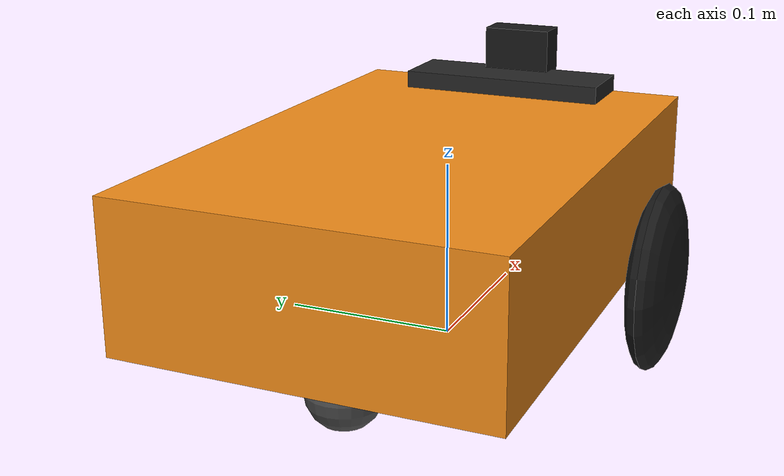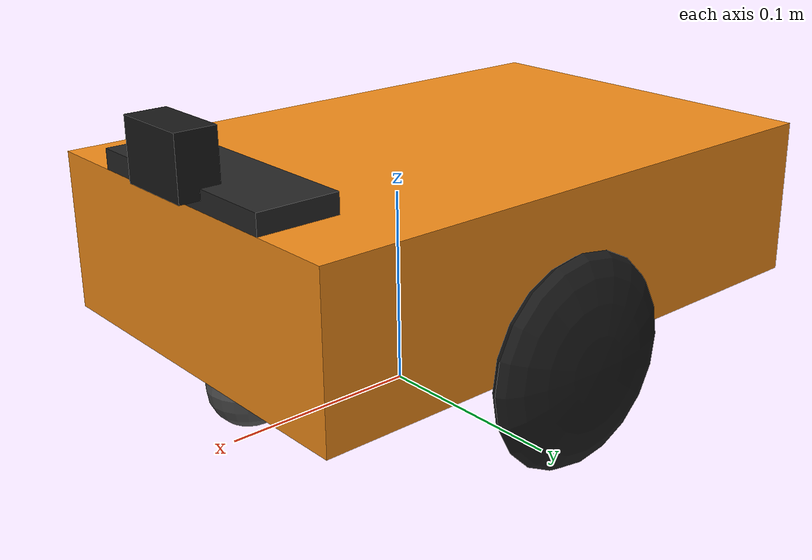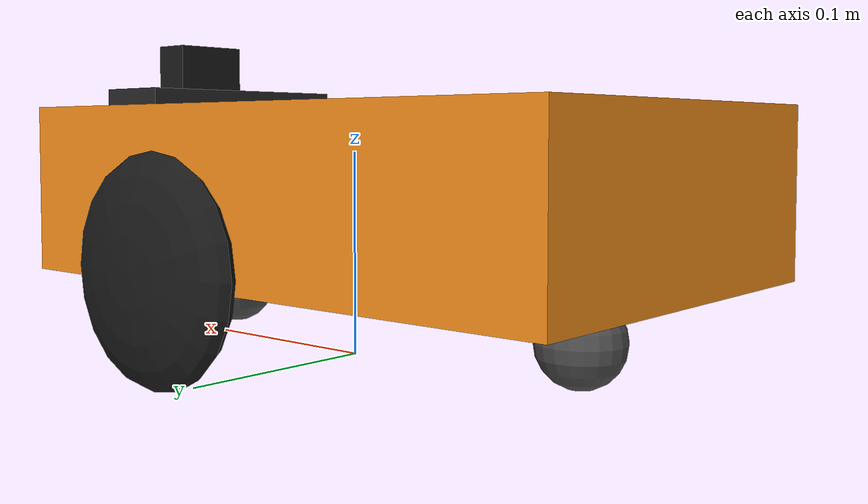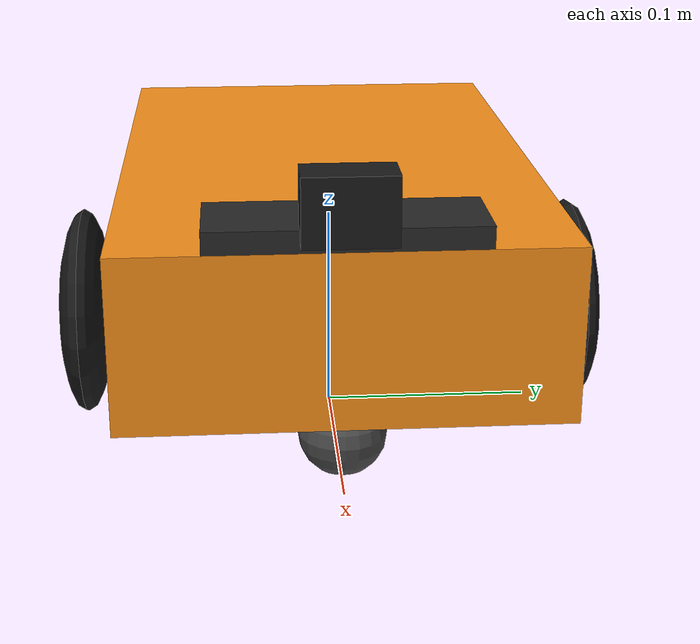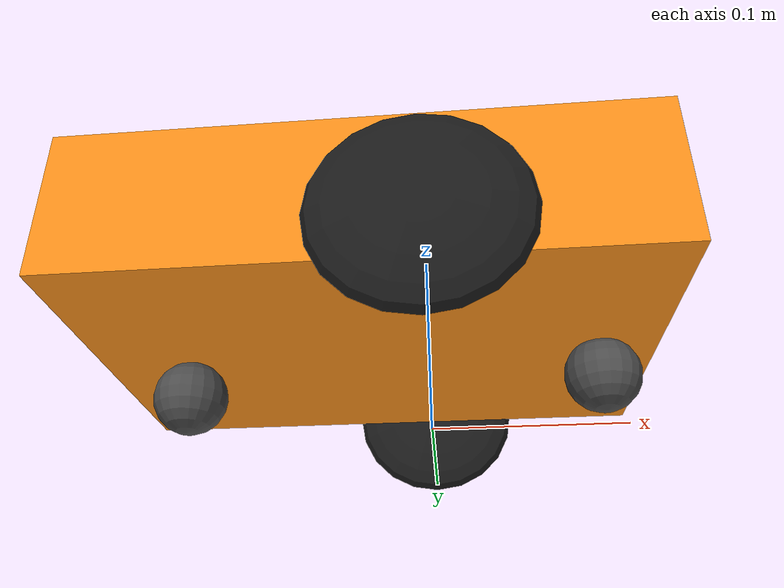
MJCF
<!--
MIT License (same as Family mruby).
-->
<mujoco model="asterism_rover">
  <worldbody>
    <body name="base_link" pos="0 0 0.052">
      <!-- Ground truth: mujoco_ros2_control publishes this free joint's pose
           as nav_msgs/Odometry (odom_free_joint_name in rover.urdf). -->
      <freejoint name="floating_base_joint"/>

      <!-- Chassis: its centre (and the centre of mass) sits behind the axle,
           so the robot rests on the rear caster. -->
      <geom name="chassis" type="box" size="0.15 0.10 0.04" pos="-0.03 0 0.03"
            mass="2.0" rgba="0.95 0.55 0.10 1"/>
      <!-- Forward marker on top (cosmetic, no collision) -->
      <geom name="nose" type="box" size="0.02 0.06 0.005" pos="0.10 0 0.075"
            contype="0" conaffinity="0" mass="0" rgba="0.15 0.15 0.15 1"/>

      <!-- Rear caster: a frictionless ball (condim 1) touching the floor. -->
      <geom name="rear_caster" type="sphere" size="0.02" pos="-0.13 0 -0.03"
            condim="1" mass="0.05" rgba="0.3 0.3 0.3 1"/>
      <!-- Front stop: 5 mm above the floor, only touches when the robot
           pitches forward under hard braking. -->
      <geom name="front_stop" type="sphere" size="0.02" pos="0.09 0 -0.025"
            condim="1" mass="0.05" rgba="0.3 0.3 0.3 1"/>

      <!-- IMU (framequat + gyro + accelerometer on this site) -->
      <site name="imu_sensor" pos="0 0 0.05" size="0.01" rgba="0 1 0 0.5"/>

      <!-- Front camera, looking along +x. A MuJoCo camera looks along its
           -z axis with +y up: xyaxes gives x = -y_body, y = +z_body. -->
      <body name="camera_body" pos="0.12 0 0.09">
        <geom name="camera_box" type="box" size="0.01 0.02 0.015" contype="0" conaffinity="0"
              mass="0.02" rgba="0.1 0.1 0.1 1"/>
        <camera name="camera" mode="fixed" fovy="60" resolution="160 120"
                pos="0.011 0 0" xyaxes="0 -1 0 0 0 1"/>
      </body>

      <!-- Wheels: flat ellipsoids (a cylinder's rim contacts slipped more),
           with stiff contacts (solref) so the tyres do not creep. -->
      <body name="left_wheel_link" pos="0 0.12 0">
        <joint name="left_wheel_joint" type="hinge" axis="0 1 0" damping="0.001" armature="0.0005"/>
        <geom name="left_wheel" type="ellipsoid" size="0.05 0.05 0.0125" quat="0.7071068 0.7071068 0 0"
              mass="0.2" friction="1.2 0.005 0.0001" solref="0.004 1" solimp="0.95 0.99 0.001" rgba="0.1 0.1 0.1 1"/>
      </body>
      <body name="right_wheel_link" pos="0 -0.12 0">
        <joint name="right_wheel_joint" type="hinge" axis="0 1 0" damping="0.001" armature="0.0005"/>
        <geom name="right_wheel" type="ellipsoid" size="0.05 0.05 0.0125" quat="0.7071068 0.7071068 0 0"
              mass="0.2" friction="1.2 0.005 0.0001" solref="0.004 1" solimp="0.95 0.99 0.001" rgba="0.1 0.1 0.1 1"/>
      </body>
    </body>
  </worldbody>

  <!-- Velocity servos: ros2_control's velocity command interface maps to
       them natively (diff_drive_controller writes wheel speeds in rad/s). -->
  <actuator>
    <velocity name="left_wheel_joint" joint="left_wheel_joint" kv="5"
              forcelimited="true" forcerange="-2 2"/>
    <velocity name="right_wheel_joint" joint="right_wheel_joint" kv="5"
              forcelimited="true" forcerange="-2 2"/>
  </actuator>

  <sensor>
    <framequat name="imu_sensor_quat" objtype="site" objname="imu_sensor"/>
    <gyro name="imu_sensor_gyro" site="imu_sensor"/>
    <accelerometer name="imu_sensor_accel" site="imu_sensor"/>
  </sensor>
</mujoco>
